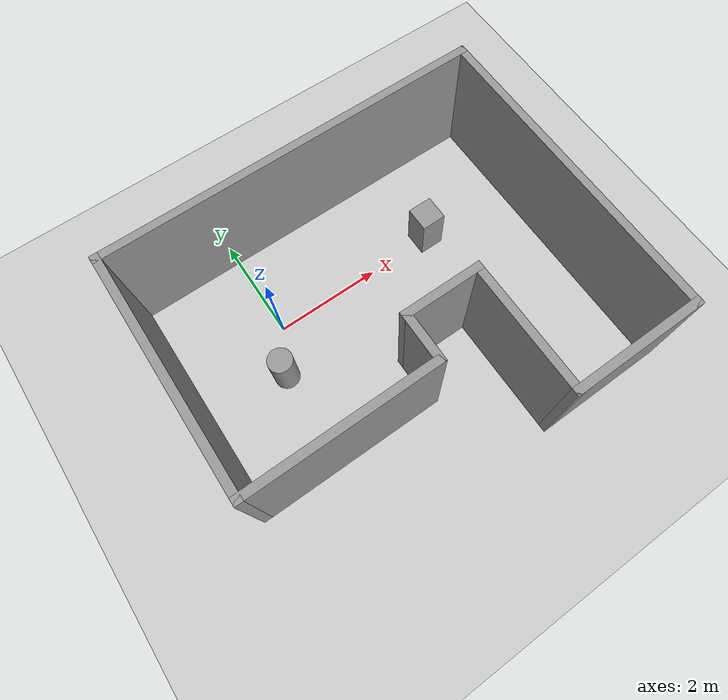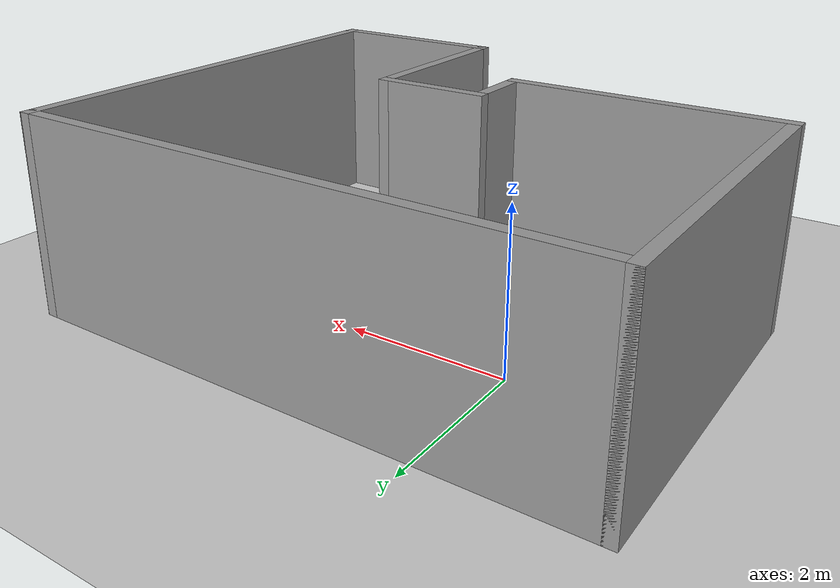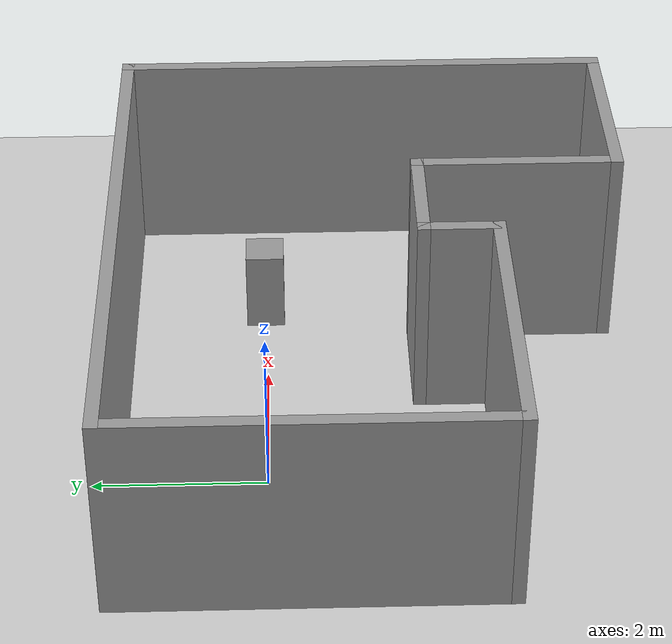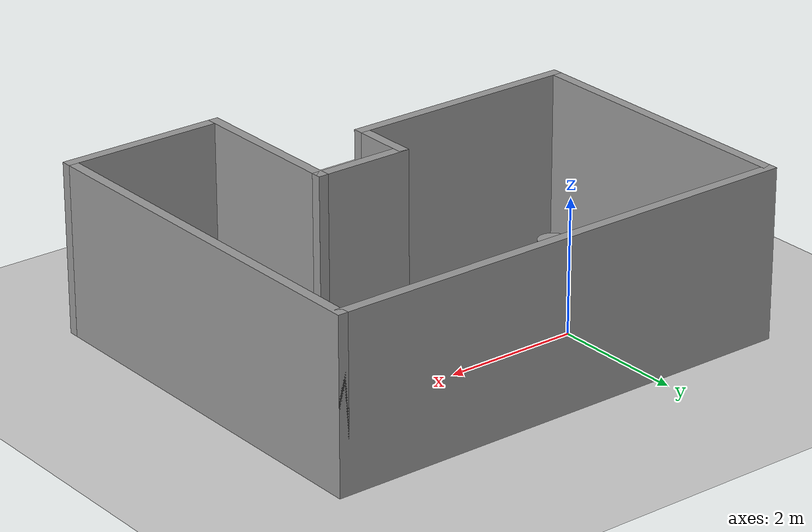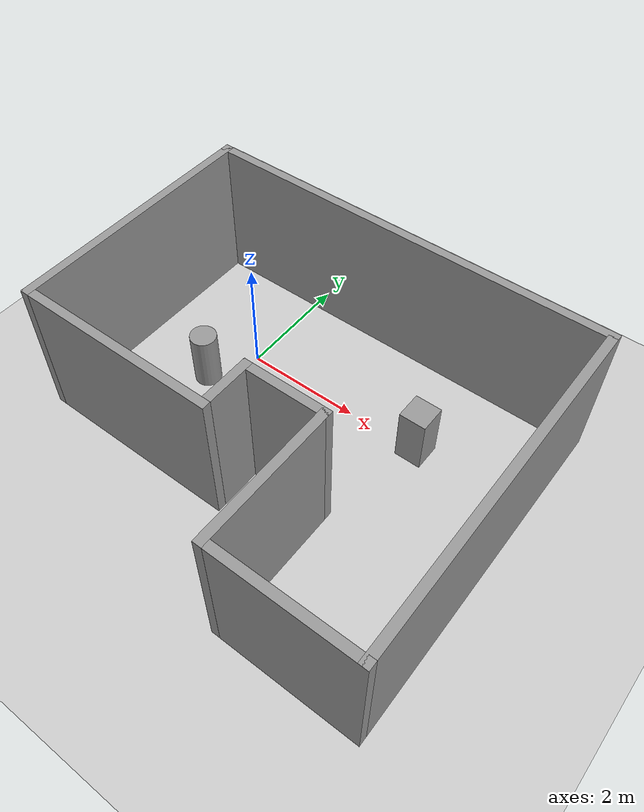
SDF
<sdf version="1.7">
 <world name="default">
  <light name="sun" type="directional">
   <pose>0 0 10 0 -0 0</pose>
   <diffuse>0.8 0.8 0.8 1</diffuse>
   <specular>0.2 0.2 0.2 1</specular>
   <attenuation>
    <range>1000</range>
    <constant>0.9</constant>
    <linear>0.01</linear>
    <quadratic>0.001</quadratic>
   </attenuation>
   <direction>-0.5 0.1 -0.9</direction>
   <spot><inner_angle>0</inner_angle><outer_angle>0</outer_angle><falloff>0</falloff></spot>
  </light>
  <model name="ground_plane">
   <static>1</static>
   <link name="link">
    <collision name="collision">
     <geometry><plane><normal>0 0 1</normal><size>100 100</size></plane></geometry>
     <surface><friction><ode><mu>100</mu><mu2>50</mu2></ode></friction></surface>
    </collision>
    <visual name="visual">
     <cast_shadows>0</cast_shadows>
     <geometry><plane><normal>0 0 1</normal><size>100 100</size></plane></geometry>
     <material>
      <script><uri>file://media/materials/scripts/gazebo.material</uri><name>Gazebo/Grey</name></script>
     </material>
    </visual>
   </link>
  </model>
  <gravity>0 0 -9.8</gravity>
  <magnetic_field>6e-06 2.3e-05 -4.2e-05</magnetic_field>
  <atmosphere type="adiabatic"/>
  <physics type="ode">
   <max_step_size>0.001</max_step_size>
   <real_time_factor>1</real_time_factor>
   <real_time_update_rate>1000</real_time_update_rate>
  </physics>
  <scene><ambient>0.4 0.4 0.4 1</ambient><background>0.7 0.7 0.7 1</background><shadows>1</shadows></scene>
  <audio><device>default</device></audio>
  <spherical_coordinates>
   <surface_model>EARTH_WGS84</surface_model>
   <latitude_deg>0</latitude_deg>
   <longitude_deg>0</longitude_deg>
   <elevation>0</elevation>
   <heading_deg>0</heading_deg>
  </spherical_coordinates>
  <model name="kat">
   <pose>1.59993 -1.21683 0 0 -0 0</pose>
   <link name="Wall_10">
    <collision name="Wall_10_Collision">
     <geometry><box><size>2.5 0.15 2.5</size></box></geometry>
     <pose>0 0 1.25 0 -0 0</pose>
    </collision>
    <visual name="Wall_10_Visual">
     <pose>0 0 1.25 0 -0 0</pose>
     <geometry><box><size>2.5 0.15 2.5</size></box></geometry>
     <material>
      <script><uri>file://media/materials/scripts/gazebo.material</uri><name>Gazebo/Grey</name></script>
      <ambient>1 1 1 1</ambient>
     </material>
     <meta><layer>0</layer></meta>
    </visual>
    <pose>1.2 -1.75 0 0 -0 1.5708</pose>
   </link>
   <link name="Wall_11">
    <collision name="Wall_11_Collision">
     <geometry><box><size>1.5 0.15 2.5</size></box></geometry>
     <pose>0 0 1.25 0 -0 0</pose>
    </collision>
    <visual name="Wall_11_Visual">
     <pose>0 0 1.25 0 -0 0</pose>
     <geometry><box><size>1.5 0.15 2.5</size></box></geometry>
     <material>
      <script><uri>file://media/materials/scripts/gazebo.material</uri><name>Gazebo/Grey</name></script>
      <ambient>1 1 1 1</ambient>
     </material>
     <meta><layer>0</layer></meta>
    </visual>
    <pose>0.525 -0.575 0 0 -0 3.14159</pose>
   </link>
   <link name="Wall_12">
    <collision name="Wall_12_Collision">
     <geometry><box><size>1 0.15 2.5</size></box></geometry>
     <pose>0 0 1.25 0 -0 0</pose>
    </collision>
    <visual name="Wall_12_Visual">
     <pose>0 0 1.25 0 -0 0</pose>
     <geometry><box><size>1 0.15 2.5</size></box></geometry>
     <material>
      <script><uri>file://media/materials/scripts/gazebo.material</uri><name>Gazebo/Grey</name></script>
      <ambient>1 1 1 1</ambient>
     </material>
     <meta><layer>0</layer></meta>
    </visual>
    <pose>-0.15 -1 0 0 -0 -1.5708</pose>
   </link>
   <link name="Wall_13">
    <collision name="Wall_13_Collision">
     <geometry><box><size>3.55 0.15 2.5</size></box></geometry>
     <pose>0 0 1.25 0 -0 0</pose>
    </collision>
    <visual name="Wall_13_Visual">
     <pose>0 0 1.25 0 -0 0</pose>
     <geometry><box><size>3.55 0.15 2.5</size></box></geometry>
     <material>
      <script><uri>file://media/materials/scripts/gazebo.material</uri><name>Gazebo/Grey</name></script>
      <ambient>1 1 1 1</ambient>
     </material>
     <meta><layer>0</layer></meta>
    </visual>
    <pose>-1.85 -1.425 0 0 -0 3.14159</pose>
   </link>
   <link name="Wall_6">
    <collision name="Wall_6_Collision">
     <geometry><box><size>4.5 0.15 2.5</size></box></geometry>
     <pose>0 0 1.25 0 -0 0</pose>
    </collision>
    <visual name="Wall_6_Visual">
     <pose>0 0 1.25 0 -0 0</pose>
     <geometry><box><size>4.5 0.15 2.5</size></box></geometry>
     <material>
      <script><uri>file://media/materials/scripts/gazebo.material</uri><name>Gazebo/Grey</name></script>
      <ambient>1 1 1 1</ambient>
     </material>
     <meta><layer>0</layer></meta>
    </visual>
    <pose>-3.55 0.75 0 0 -0 1.5708</pose>
   </link>
   <link name="Wall_7">
    <collision name="Wall_7_Collision">
     <geometry><box><size>7.25 0.15 2.5</size></box></geometry>
     <pose>0 0 1.25 0 -0 0</pose>
    </collision>
    <visual name="Wall_7_Visual">
     <pose>0 0 1.25 0 -0 0</pose>
     <geometry><box><size>7.25 0.15 2.5</size></box></geometry>
     <material>
      <script><uri>file://media/materials/scripts/gazebo.material</uri><name>Gazebo/Grey</name></script>
      <ambient>1 1 1 1</ambient>
     </material>
     <meta><layer>0</layer></meta>
    </visual>
    <pose>-0 2.925 0 0 -0 0</pose>
   </link>
   <link name="Wall_8">
    <collision name="Wall_8_Collision">
     <geometry><box><size>6 0.15 2.5</size></box></geometry>
     <pose>0 0 1.25 0 -0 0</pose>
    </collision>
    <visual name="Wall_8_Visual">
     <pose>0 0 1.25 0 -0 0</pose>
     <geometry><box><size>6 0.15 2.5</size></box></geometry>
     <material>
      <script><uri>file://media/materials/scripts/gazebo.material</uri><name>Gazebo/Grey</name></script>
      <ambient>1 1 1 1</ambient>
     </material>
     <meta><layer>0</layer></meta>
    </visual>
    <pose>3.55 0 0 0 -0 -1.5708</pose>
   </link>
   <link name="Wall_9">
    <collision name="Wall_9_Collision">
     <geometry><box><size>2.5 0.15 2.5</size></box></geometry>
     <pose>0 0 1.25 0 -0 0</pose>
    </collision>
    <visual name="Wall_9_Visual">
     <pose>0 0 1.25 0 -0 0</pose>
     <geometry><box><size>2.5 0.15 2.5</size></box></geometry>
     <material>
      <script><uri>file://media/materials/scripts/gazebo.material</uri><name>Gazebo/Grey</name></script>
      <ambient>1 1 1 1</ambient>
     </material>
     <meta><layer>0</layer></meta>
    </visual>
    <pose>2.375 -2.925 0 0 -0 3.14159</pose>
   </link>
   <static>1</static>
  </model>
  <model name="unit_box">
   <pose>3.24036 0.027594 0.5 0 -0 0</pose>
   <link name="link">
    <inertial>
     <mass>1</mass>
     <inertia>
      <ixx>0.166667</ixx>
      <ixy>0</ixy>
      <ixz>0</ixz>
      <iyy>0.166667</iyy>
      <iyz>0</iyz>
      <izz>0.166667</izz>
     </inertia>
    </inertial>
    <collision name="collision"><geometry><box><size>0.458144 0.460216 1</size></box></geometry></collision>
    <visual name="visual">
     <geometry><box><size>0.458144 0.460216 1</size></box></geometry>
     <material>
      <script><name>Gazebo/Grey</name><uri>file://media/materials/scripts/gazebo.material</uri></script>
     </material>
    </visual>
   </link>
  </model>
  <model name="unit_cylinder">
   <pose>-0.411486 -0.811195 0.5 0 -0 0</pose>
   <link name="link">
    <inertial>
     <mass>1</mass>
     <inertia><ixx>0.145833</ixx><ixy>0</ixy><ixz>0</ixz><iyy>0.145833</iyy><iyz>0</iyz><izz>0.125</izz></inertia>
    </inertial>
    <collision name="collision">
     <geometry><cylinder><radius>0.224574</radius><length>1</length></cylinder></geometry>
    </collision>
    <visual name="visual">
     <geometry><cylinder><radius>0.224574</radius><length>1</length></cylinder></geometry>
     <material>
      <script><name>Gazebo/Grey</name><uri>file://media/materials/scripts/gazebo.material</uri></script>
     </material>
    </visual>
   </link>
  </model>
 </world>
</sdf>
